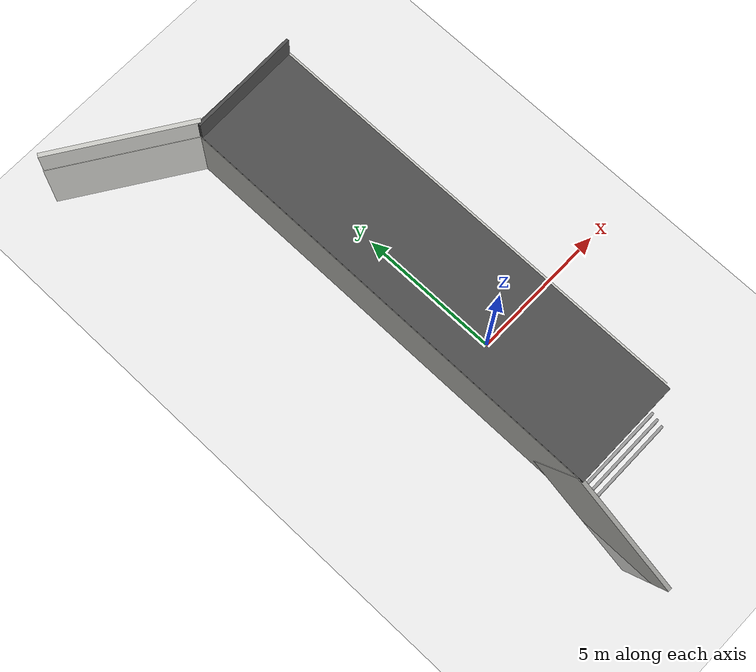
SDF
<sdf version="1.6">
 <world name="default">
  <model name="ground_plane">
   <static>1</static>
   <link name="link">
    <collision name="collision">
     <geometry><plane><normal>0 0 1</normal><size>100 100</size></plane></geometry>
     <surface><friction><ode><mu>100</mu><mu2>50</mu2></ode></friction></surface>
    </collision>
    <visual name="visual">
     <cast_shadows>0</cast_shadows>
     <geometry><plane><normal>0 0 1</normal><size>100 100</size></plane></geometry>
     <material>
      <script><uri>file://media/materials/scripts/gazebo.material</uri><name>Gazebo/Grey</name></script>
     </material>
    </visual>
   </link>
  </model>
  <model name="unit_box_0_static_clone_0">
   <link name="link">
    <inertial>
     <mass>1</mass>
     <inertia>
      <ixx>0.166667</ixx>
      <ixy>0</ixy>
      <ixz>0</ixz>
      <iyy>0.166667</iyy>
      <iyz>0</iyz>
      <izz>0.166667</izz>
     </inertia>
    </inertial>
    <visual name="visual">
     <geometry><box><size>0.092218 3.57895 0.407783</size></box></geometry>
     <material>
      <script><name>Gazebo/Grey</name><uri>file://media/materials/scripts/gazebo.material</uri></script>
      <shader type="pixel"/>
     </material>
    </visual>
    <collision name="collision">
     <geometry><box><size>0.092218 3.57895 0.407783</size></box></geometry>
     <surface>
      <friction>
       <ode><mu>1</mu><mu2>1</mu2><fdir1>0 0 0</fdir1><slip1>0</slip1><slip2>0</slip2></ode>
       <torsional>
        <coefficient>1</coefficient>
        <patch_radius>0</patch_radius>
        <surface_radius>0</surface_radius>
        <use_patch_radius>1</use_patch_radius>
        <ode><slip>0</slip></ode>
       </torsional>
      </friction>
      <bounce><restitution_coefficient>0</restitution_coefficient><threshold>1e+06</threshold></bounce>
      <contact>
       <collide_without_contact>0</collide_without_contact>
       <collide_without_contact_bitmask>1</collide_without_contact_bitmask>
       <collide_bitmask>1</collide_bitmask>
       <ode>
        <soft_cfm>0</soft_cfm>
        <soft_erp>0.2</soft_erp>
        <kp>1e+13</kp>
        <kd>1</kd>
        <max_vel>0.01</max_vel>
        <min_depth>0</min_depth>
       </ode>
       <bullet>
        <split_impulse>1</split_impulse>
        <split_impulse_penetration_threshold>-0.01</split_impulse_penetration_threshold>
        <soft_cfm>0</soft_cfm>
        <soft_erp>0.2</soft_erp>
        <kp>1e+13</kp>
        <kd>1</kd>
       </bullet>
      </contact>
     </surface>
    </collision>
   </link>
   <static>1</static>
   <pose>-0.130791 -5.76028 0.422576 0 0 -1.5707</pose>
  </model>
  <model name="unit_box_0_static_clone_0_clone">
   <link name="link">
    <inertial>
     <mass>1</mass>
     <inertia>
      <ixx>0.166667</ixx>
      <ixy>0</ixy>
      <ixz>0</ixz>
      <iyy>0.166667</iyy>
      <iyz>0</iyz>
      <izz>0.166667</izz>
     </inertia>
    </inertial>
    <visual name="visual">
     <geometry><box><size>0.092218 3.57895 0.407783</size></box></geometry>
     <material>
      <script><name>Gazebo/Grey</name><uri>file://media/materials/scripts/gazebo.material</uri></script>
      <shader type="pixel"/>
     </material>
    </visual>
    <collision name="collision">
     <geometry><box><size>0.092218 3.57895 0.407783</size></box></geometry>
     <surface>
      <friction>
       <ode><mu>1</mu><mu2>1</mu2><fdir1>0 0 0</fdir1><slip1>0</slip1><slip2>0</slip2></ode>
       <torsional>
        <coefficient>1</coefficient>
        <patch_radius>0</patch_radius>
        <surface_radius>0</surface_radius>
        <use_patch_radius>1</use_patch_radius>
        <ode><slip>0</slip></ode>
       </torsional>
      </friction>
      <bounce><restitution_coefficient>0</restitution_coefficient><threshold>1e+06</threshold></bounce>
      <contact>
       <collide_without_contact>0</collide_without_contact>
       <collide_without_contact_bitmask>1</collide_without_contact_bitmask>
       <collide_bitmask>1</collide_bitmask>
       <ode>
        <soft_cfm>0</soft_cfm>
        <soft_erp>0.2</soft_erp>
        <kp>1e+13</kp>
        <kd>1</kd>
        <max_vel>0.01</max_vel>
        <min_depth>0</min_depth>
       </ode>
       <bullet>
        <split_impulse>1</split_impulse>
        <split_impulse_penetration_threshold>-0.01</split_impulse_penetration_threshold>
        <soft_cfm>0</soft_cfm>
        <soft_erp>0.2</soft_erp>
        <kp>1e+13</kp>
        <kd>1</kd>
       </bullet>
      </contact>
     </surface>
    </collision>
   </link>
   <static>1</static>
   <pose>-0.123897 -5.5252 0.62338 0 0 -1.5707</pose>
  </model>
  <model name="unit_box_0_static_clone_0_clone_clone">
   <link name="link">
    <inertial>
     <mass>1</mass>
     <inertia>
      <ixx>0.166667</ixx>
      <ixy>0</ixy>
      <ixz>0</ixz>
      <iyy>0.166667</iyy>
      <iyz>0</iyz>
      <izz>0.166667</izz>
     </inertia>
    </inertial>
    <visual name="visual">
     <geometry><box><size>0.092218 3.57895 0.407783</size></box></geometry>
     <material>
      <script><name>Gazebo/Grey</name><uri>file://media/materials/scripts/gazebo.material</uri></script>
      <shader type="pixel"/>
     </material>
    </visual>
    <collision name="collision">
     <geometry><box><size>0.092218 3.57895 0.407783</size></box></geometry>
     <surface>
      <friction>
       <ode><mu>1</mu><mu2>1</mu2><fdir1>0 0 0</fdir1><slip1>0</slip1><slip2>0</slip2></ode>
       <torsional>
        <coefficient>1</coefficient>
        <patch_radius>0</patch_radius>
        <surface_radius>0</surface_radius>
        <use_patch_radius>1</use_patch_radius>
        <ode><slip>0</slip></ode>
       </torsional>
      </friction>
      <bounce><restitution_coefficient>0</restitution_coefficient><threshold>1e+06</threshold></bounce>
      <contact>
       <collide_without_contact>0</collide_without_contact>
       <collide_without_contact_bitmask>1</collide_without_contact_bitmask>
       <collide_bitmask>1</collide_bitmask>
       <ode>
        <soft_cfm>0</soft_cfm>
        <soft_erp>0.2</soft_erp>
        <kp>1e+13</kp>
        <kd>1</kd>
        <max_vel>0.01</max_vel>
        <min_depth>0</min_depth>
       </ode>
       <bullet>
        <split_impulse>1</split_impulse>
        <split_impulse_penetration_threshold>-0.01</split_impulse_penetration_threshold>
        <soft_cfm>0</soft_cfm>
        <soft_erp>0.2</soft_erp>
        <kp>1e+13</kp>
        <kd>1</kd>
       </bullet>
      </contact>
     </surface>
    </collision>
   </link>
   <static>1</static>
   <pose>-0.128111 -5.29185 0.822943 0 0 -1.5707</pose>
  </model>
  <model name="Untitled_1_0_clone_0">
   <pose>-3.71194 -5.73886 0.077716 0 -0.606196 1.5707</pose>
   <link name="Wall_16">
    <collision name="Wall_16_Collision">
     <geometry><box><size>5 0.15 2.5</size></box></geometry>
     <pose>0 0 1.25 0 -0 0</pose>
    </collision>
    <visual name="Wall_16_Visual">
     <pose>0 0 1.25 0 -0 0</pose>
     <geometry><box><size>5 0.15 2.5</size></box></geometry>
     <material>
      <script><uri>file://media/materials/scripts/gazebo.material</uri><name>Gazebo/CeilingTiled</name></script>
      <ambient>1 1 1 1</ambient>
     </material>
     <meta><layer>0</layer></meta>
    </visual>
    <pose>0 -1.66958 0 0 -0 0</pose>
   </link>
   <static>1</static>
  </model>
  <model name="Untitled_1_clone">
   <link name="Wall_7">
    <pose>1.35961 -5e-06 0 0 -0 1.5708</pose>
    <visual name="Wall_7_Visual">
     <pose>0 0 1.25 0 -0 0</pose>
     <geometry><box><size>15.5 0.15 2.5</size></box></geometry>
     <material>
      <script><uri>file://media/materials/scripts/gazebo.material</uri><name>Gazebo/CeilingTiled</name></script>
      <ambient>1 1 1 1</ambient>
      <shader type="pixel"/>
     </material>
     <meta><layer>0</layer></meta>
    </visual>
    <collision name="Wall_7_Collision">
     <pose>0 0 1.25 0 -0 0</pose>
     <geometry><box><size>15.5 0.15 2.5</size></box></geometry>
     <surface>
      <friction>
       <ode><mu>1</mu><mu2>1</mu2><fdir1>0 0 0</fdir1><slip1>0</slip1><slip2>0</slip2></ode>
       <torsional>
        <coefficient>1</coefficient>
        <patch_radius>0</patch_radius>
        <surface_radius>0</surface_radius>
        <use_patch_radius>1</use_patch_radius>
        <ode><slip>0</slip></ode>
       </torsional>
      </friction>
      <bounce><restitution_coefficient>0</restitution_coefficient><threshold>1e+06</threshold></bounce>
      <contact>
       <collide_without_contact>0</collide_without_contact>
       <collide_without_contact_bitmask>1</collide_without_contact_bitmask>
       <collide_bitmask>1</collide_bitmask>
       <ode>
        <soft_cfm>0</soft_cfm>
        <soft_erp>0.2</soft_erp>
        <kp>1e+13</kp>
        <kd>1</kd>
        <max_vel>0.01</max_vel>
        <min_depth>0</min_depth>
       </ode>
       <bullet>
        <split_impulse>1</split_impulse>
        <split_impulse_penetration_threshold>-0.01</split_impulse_penetration_threshold>
        <soft_cfm>0</soft_cfm>
        <soft_erp>0.2</soft_erp>
        <kp>1e+13</kp>
        <kd>1</kd>
       </bullet>
      </contact>
     </surface>
    </collision>
   </link>
   <link name="Wall_9">
    <pose>-2.425 0 0 0 -0 1.5708</pose>
    <visual name="Wall_9_Visual">
     <pose>0 0 1.25 0 -0 0</pose>
     <geometry><box><size>15.5 0.15 2.5</size></box></geometry>
     <material>
      <script><uri>file://media/materials/scripts/gazebo.material</uri><name>Gazebo/CeilingTiled</name></script>
      <ambient>1 1 1 1</ambient>
      <shader type="pixel"/>
     </material>
     <meta><layer>0</layer></meta>
    </visual>
    <collision name="Wall_9_Collision">
     <pose>0 0 1.25 0 -0 0</pose>
     <geometry><box><size>15.5 0.15 2.5</size></box></geometry>
     <surface>
      <friction>
       <ode><mu>1</mu><mu2>1</mu2><fdir1>0 0 0</fdir1><slip1>0</slip1><slip2>0</slip2></ode>
       <torsional>
        <coefficient>1</coefficient>
        <patch_radius>0</patch_radius>
        <surface_radius>0</surface_radius>
        <use_patch_radius>1</use_patch_radius>
        <ode><slip>0</slip></ode>
       </torsional>
      </friction>
      <bounce><restitution_coefficient>0</restitution_coefficient><threshold>1e+06</threshold></bounce>
      <contact>
       <collide_without_contact>0</collide_without_contact>
       <collide_without_contact_bitmask>1</collide_without_contact_bitmask>
       <collide_bitmask>1</collide_bitmask>
       <ode>
        <soft_cfm>0</soft_cfm>
        <soft_erp>0.2</soft_erp>
        <kp>1e+13</kp>
        <kd>1</kd>
        <max_vel>0.01</max_vel>
        <min_depth>0</min_depth>
       </ode>
       <bullet>
        <split_impulse>1</split_impulse>
        <split_impulse_penetration_threshold>-0.01</split_impulse_penetration_threshold>
        <soft_cfm>0</soft_cfm>
        <soft_erp>0.2</soft_erp>
        <kp>1e+13</kp>
        <kd>1</kd>
       </bullet>
      </contact>
     </surface>
    </collision>
   </link>
   <static>1</static>
   <pose>0.39999 2.62887 1.05101 0 -0 0</pose>
  </model>
  <model name="Untitled_1_0_clone">
   <pose>-4.9863 10.2711 1.05157 0 -0 2.56674</pose>
   <link name="Wall_16">
    <collision name="Wall_16_Collision">
     <geometry><box><size>5 0.15 2.5</size></box></geometry>
     <pose>0 0 1.25 0 -0 0</pose>
    </collision>
    <visual name="Wall_16_Visual">
     <pose>0 0 1.25 0 -0 0</pose>
     <geometry><box><size>5 0.15 2.5</size></box></geometry>
     <material>
      <script><uri>file://media/materials/scripts/gazebo.material</uri><name>Gazebo/CeilingTiled</name></script>
      <ambient>1 1 1 1</ambient>
     </material>
     <meta><layer>0</layer></meta>
    </visual>
    <pose>0 -1.66958 0 0 -0 0</pose>
   </link>
   <static>1</static>
  </model>
  <model name="Untitled_1_0_clone_clone_1">
   <pose>-4.96028 10.2797 2.03296 0 -0 2.56674</pose>
   <link name="Wall_16">
    <collision name="Wall_16_Collision">
     <geometry><box><size>5 0.15 2.5</size></box></geometry>
     <pose>0 0 1.25 0 -0 0</pose>
    </collision>
    <visual name="Wall_16_Visual">
     <pose>0 0 1.25 0 -0 0</pose>
     <geometry><box><size>5 0.15 2.5</size></box></geometry>
     <material>
      <script><uri>file://media/materials/scripts/gazebo.material</uri><name>Gazebo/CeilingTiled</name></script>
      <ambient>1 1 1 1</ambient>
     </material>
     <meta><layer>0</layer></meta>
    </visual>
    <pose>0 -1.66958 0 0 -0 0</pose>
   </link>
   <static>1</static>
  </model>
  <model name="asphalt_plane_floor_clone">
   <link name="link">
    <inertial>
     <inertia><ixx>0</ixx><ixy>0</ixy><ixz>0</ixz><iyy>0</iyy><iyz>0</iyz><izz>0</izz></inertia>
     <mass>0</mass>
    </inertial>
    <pose>0.083107 -2.24648 0 0 -0 0</pose>
    <visual name="visual">
     <cast_shadows>0</cast_shadows>
     <geometry><box><size>3.84906 16.012 0.1</size></box></geometry>
     <material>
      <script>
       <uri>model://asphalt_plane/materials/scripts</uri>
       <uri>model://asphalt_plane/materials/textures</uri>
       <name>vrc/asphalt</name>
      </script>
      <shader type="pixel"/>
     </material>
    </visual>
    <collision name="collision">
     <geometry><box><size>3.84906 16.012 0.1</size></box></geometry>
     <surface>
      <friction>
       <ode><mu>1</mu><mu2>1</mu2><fdir1>0 0 0</fdir1><slip1>0</slip1><slip2>0</slip2></ode>
       <torsional>
        <coefficient>1</coefficient>
        <patch_radius>0</patch_radius>
        <surface_radius>0</surface_radius>
        <use_patch_radius>1</use_patch_radius>
        <ode><slip>0</slip></ode>
       </torsional>
      </friction>
      <bounce><restitution_coefficient>0</restitution_coefficient><threshold>1e+06</threshold></bounce>
      <contact>
       <collide_without_contact>0</collide_without_contact>
       <collide_without_contact_bitmask>1</collide_without_contact_bitmask>
       <collide_bitmask>1</collide_bitmask>
       <ode>
        <soft_cfm>0</soft_cfm>
        <soft_erp>0.2</soft_erp>
        <kp>1e+13</kp>
        <kd>1</kd>
        <max_vel>0.01</max_vel>
        <min_depth>0</min_depth>
       </ode>
       <bullet>
        <split_impulse>1</split_impulse>
        <split_impulse_penetration_threshold>-0.01</split_impulse_penetration_threshold>
        <soft_cfm>0</soft_cfm>
        <soft_erp>0.2</soft_erp>
        <kp>1e+13</kp>
        <kd>1</kd>
       </bullet>
      </contact>
     </surface>
    </collision>
   </link>
   <static>1</static>
   <pose>-0.184574 5.14948 1.02071 0 -0 0</pose>
  </model>
  <model name="asphalt_plane_floor_clone_0">
   <link name="link">
    <inertial>
     <inertia><ixx>0</ixx><ixy>0</ixy><ixz>0</ixz><iyy>0</iyy><iyz>0</iyz><izz>0</izz></inertia>
     <mass>0</mass>
    </inertial>
    <pose>0.083107 -2.24648 0 0 -0 0</pose>
    <visual name="visual">
     <cast_shadows>0</cast_shadows>
     <geometry><box><size>3.84906 16.012 0.1</size></box></geometry>
     <material>
      <script>
       <uri>model://asphalt_plane/materials/scripts</uri>
       <uri>model://asphalt_plane/materials/textures</uri>
       <name>vrc/asphalt</name>
      </script>
      <shader type="pixel"/>
     </material>
    </visual>
    <collision name="collision">
     <geometry><box><size>3.84906 16.012 0.1</size></box></geometry>
     <surface>
      <friction>
       <ode><mu>1</mu><mu2>1</mu2><fdir1>0 0 0</fdir1><slip1>0</slip1><slip2>0</slip2></ode>
       <torsional>
        <coefficient>1</coefficient>
        <patch_radius>0</patch_radius>
        <surface_radius>0</surface_radius>
        <use_patch_radius>1</use_patch_radius>
        <ode><slip>0</slip></ode>
       </torsional>
      </friction>
      <bounce><restitution_coefficient>0</restitution_coefficient><threshold>1e+06</threshold></bounce>
      <contact>
       <collide_without_contact>0</collide_without_contact>
       <collide_without_contact_bitmask>1</collide_without_contact_bitmask>
       <collide_bitmask>1</collide_bitmask>
       <ode>
        <soft_cfm>0</soft_cfm>
        <soft_erp>0.2</soft_erp>
        <kp>1e+13</kp>
        <kd>1</kd>
        <max_vel>0.01</max_vel>
        <min_depth>0</min_depth>
       </ode>
       <bullet>
        <split_impulse>1</split_impulse>
        <split_impulse_penetration_threshold>-0.01</split_impulse_penetration_threshold>
        <soft_cfm>0</soft_cfm>
        <soft_erp>0.2</soft_erp>
        <kp>1e+13</kp>
        <kd>1</kd>
       </bullet>
      </contact>
     </surface>
    </collision>
   </link>
   <static>1</static>
   <pose>-0.247392 4.95212 3.5164 0 -0 0</pose>
  </model>
  <model name="asphalt_plane_clone_0">
   <link name="link">
    <inertial>
     <inertia><ixx>0</ixx><ixy>0</ixy><ixz>0</ixz><iyy>0</iyy><iyz>0</iyz><izz>0</izz></inertia>
     <mass>0</mass>
    </inertial>
    <pose>0.093044 3.01498 -0.435687 1.5811 0.000249 0.017393</pose>
    <visual name="visual">
     <cast_shadows>0</cast_shadows>
     <geometry><box><size>3.89043 0.91599 0.1</size></box></geometry>
     <material>
      <script>
       <uri>model://asphalt_plane/materials/scripts</uri>
       <uri>model://asphalt_plane/materials/textures</uri>
       <name>vrc/asphalt</name>
      </script>
      <shader type="pixel"/>
     </material>
    </visual>
    <collision name="collision">
     <geometry><box><size>3.89043 0.91599 0.1</size></box></geometry>
     <surface>
      <friction>
       <ode><mu>1</mu><mu2>1</mu2><fdir1>0 0 0</fdir1><slip1>0</slip1><slip2>0</slip2></ode>
       <torsional>
        <coefficient>1</coefficient>
        <patch_radius>0</patch_radius>
        <surface_radius>0</surface_radius>
        <use_patch_radius>1</use_patch_radius>
        <ode><slip>0</slip></ode>
       </torsional>
      </friction>
      <bounce><restitution_coefficient>0</restitution_coefficient><threshold>1e+06</threshold></bounce>
      <contact>
       <collide_without_contact>0</collide_without_contact>
       <collide_without_contact_bitmask>1</collide_without_contact_bitmask>
       <collide_bitmask>1</collide_bitmask>
       <ode>
        <soft_cfm>0</soft_cfm>
        <soft_erp>0.2</soft_erp>
        <kp>1e+13</kp>
        <kd>1</kd>
        <max_vel>0.01</max_vel>
        <min_depth>0</min_depth>
       </ode>
       <bullet>
        <split_impulse>1</split_impulse>
        <split_impulse_penetration_threshold>-0.01</split_impulse_penetration_threshold>
        <soft_cfm>0</soft_cfm>
        <soft_erp>0.2</soft_erp>
        <kp>1e+13</kp>
        <kd>1</kd>
       </bullet>
      </contact>
     </surface>
    </collision>
   </link>
   <static>1</static>
   <pose>-0.249164 7.28803 4.48079 0 -0 0</pose>
  </model>
 </world>
</sdf>
